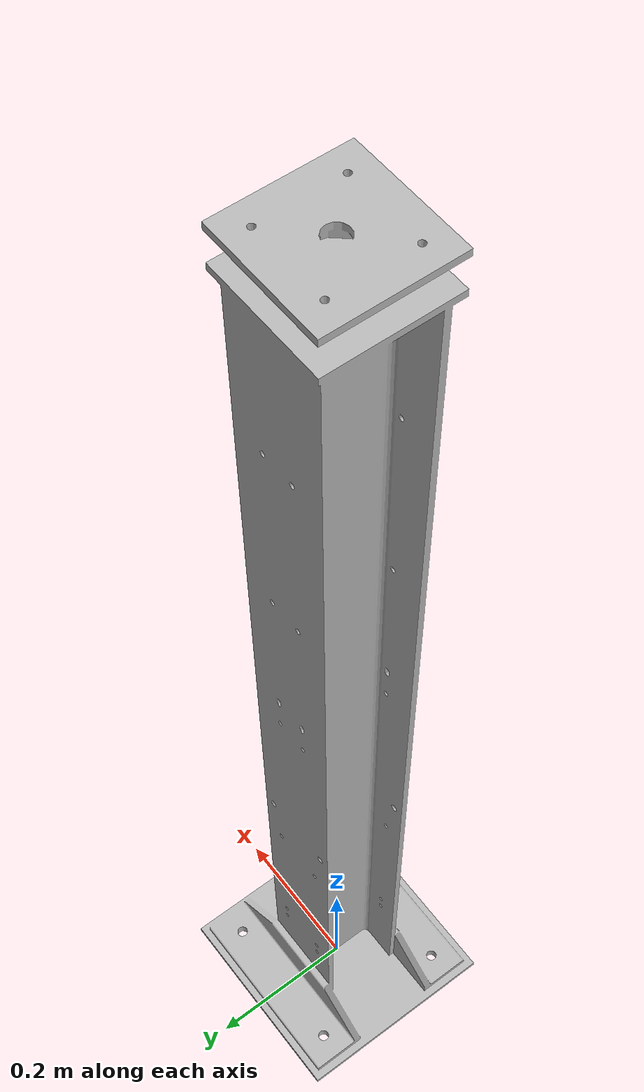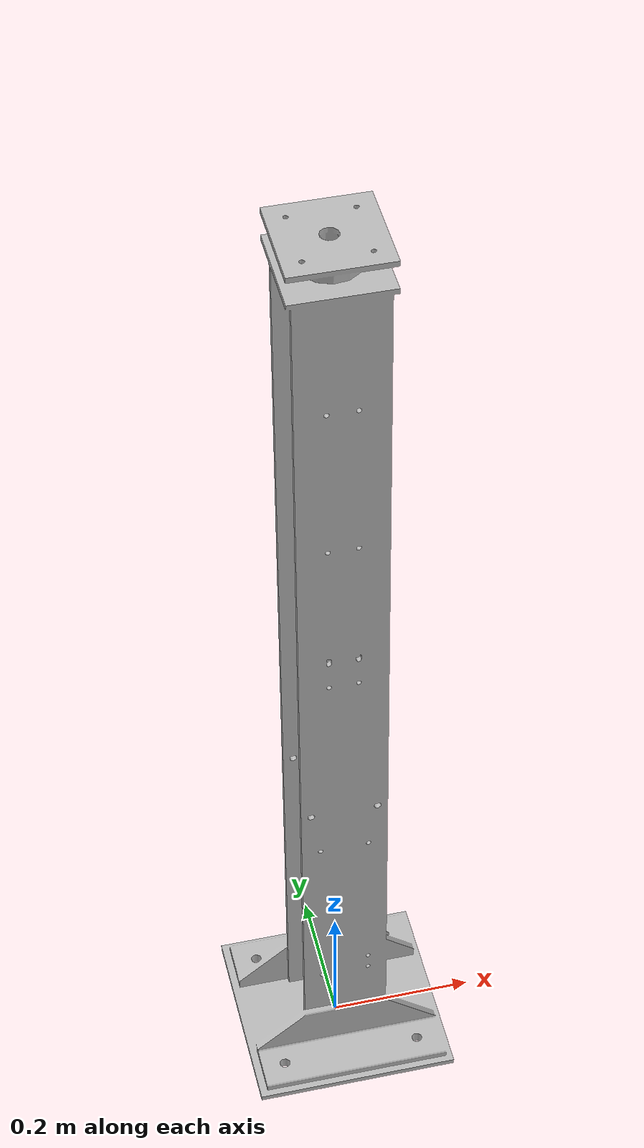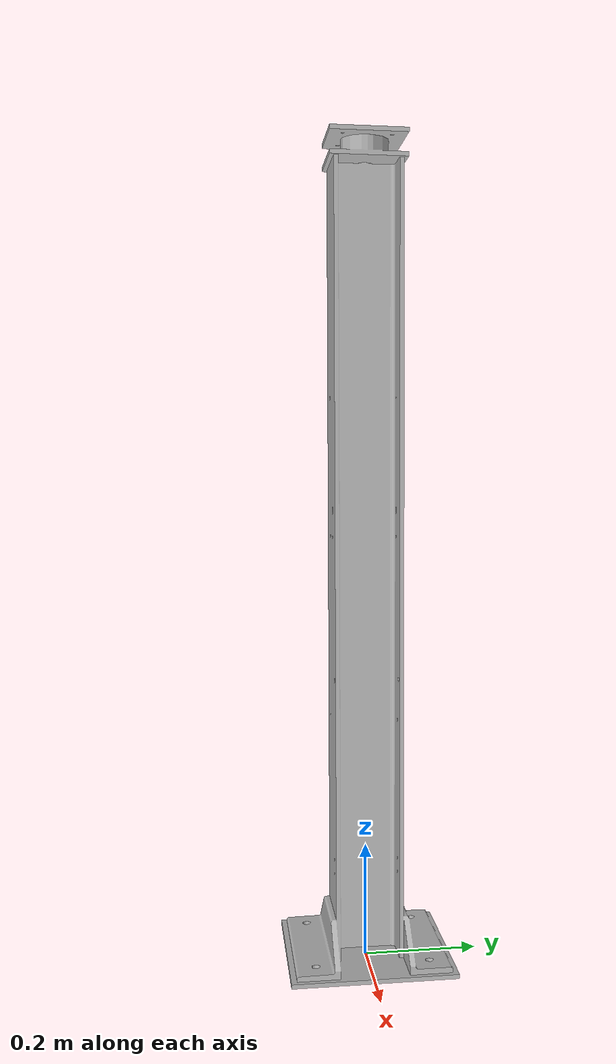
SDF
<?xml version='1.0'?>
<sdf version='1.4'>
  <model name="FGAG2007">
 <static>false</static>
 <link name="mesh_link">
	<inertial>
            <mass>100.0</mass>
 	</inertial>
        <visual name="visual">
        <geometry>
            <mesh><uri>model://FGAG2007/meshes/FGAG2007.stl</uri></mesh>
          </geometry>
        </visual>
        <collision name="collision">
          <geometry>
            <mesh><uri>model://FGAG2007/meshes/FGAG2007.stl</uri></mesh>
          </geometry>
        </collision>
      </link>
  </model>
</sdf>
